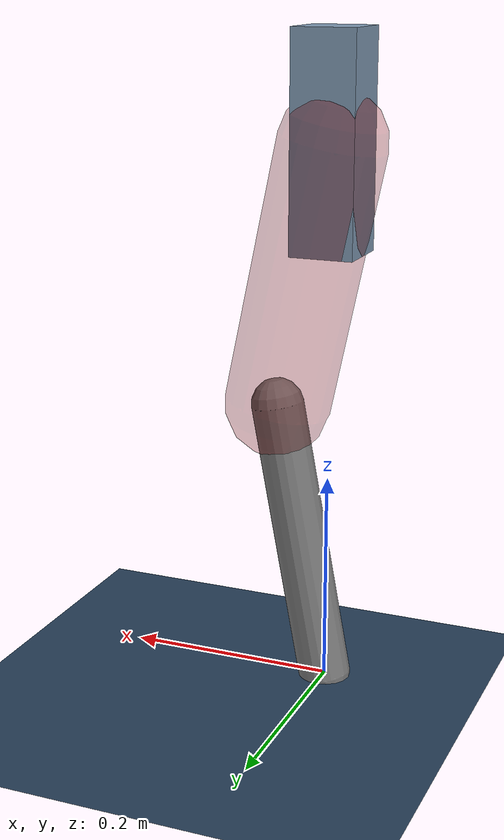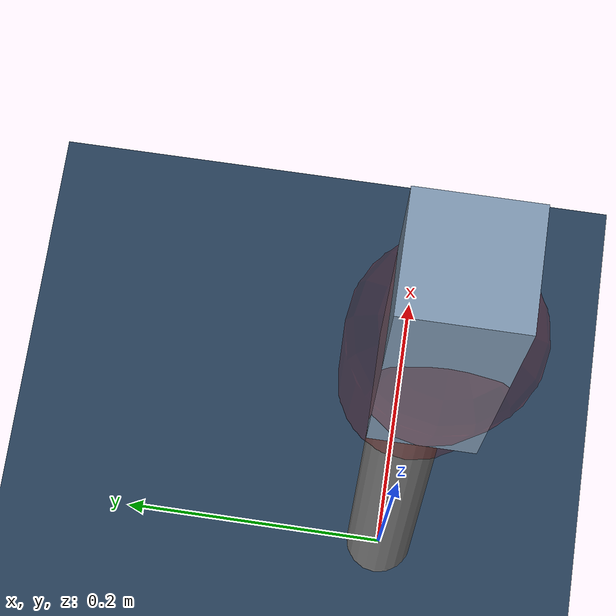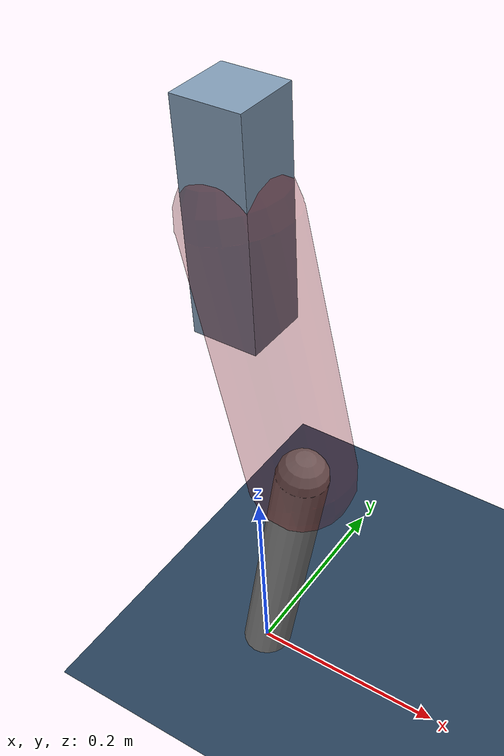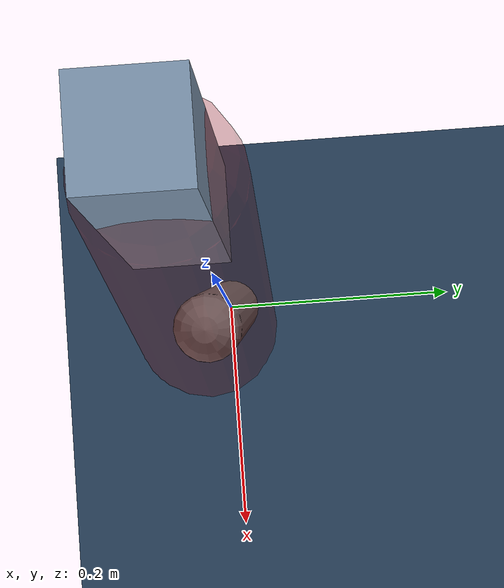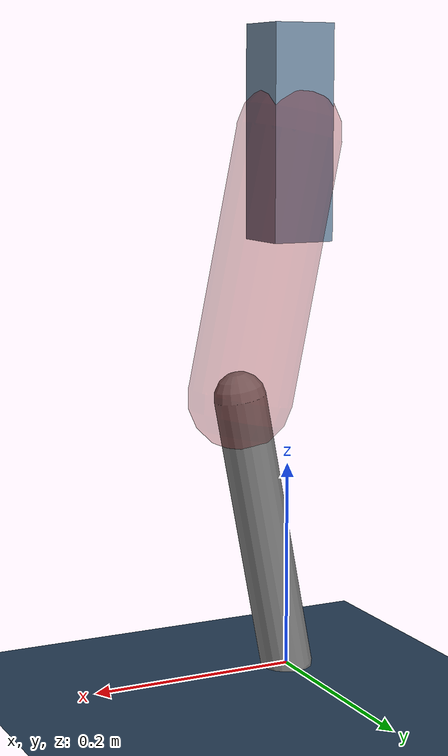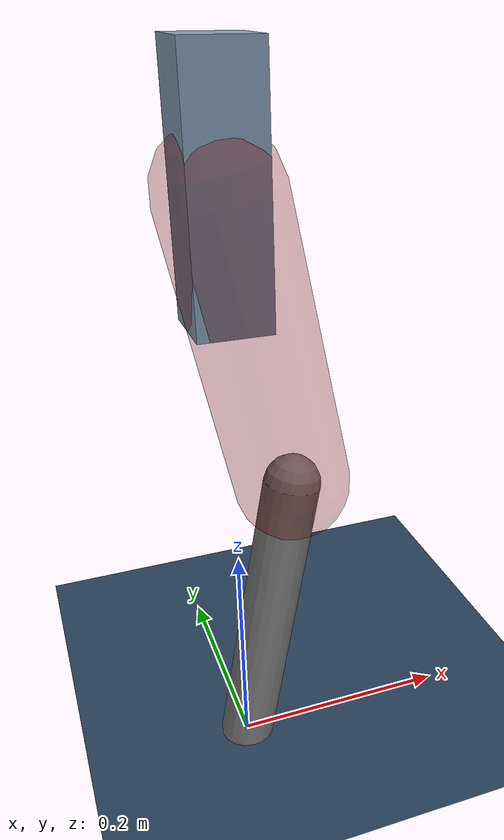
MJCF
<mujoco model="Hopper2D">
	<compiler inertiafromgeom="true" angle="radian" />
	<option timestep="0.001" integrator="implicit" cone="elliptic" solver="Newton" tolerance="1e-10" />

	<default>
		<geom contype="1" conaffinity="1" condim="3" friction="2 0.005 0.0001" solref="0.005 1" />
		<joint limited="true" damping="0.1" />
	</default>

	<asset>
		<texture name="skybox" type="skybox" builtin="gradient" rgb1=".4 .6 .8" rgb2="0 0 0" width="800" height="800" />
		<texture name="grid" type="2d" builtin="checker" rgb1=".1 .2 .3" rgb2=".2 .3 .4" width="300" height="300" mark="edge" markrgb=".2 .3 .4" />
		<material name="ground" texture="grid" texrepeat="1 1" texuniform="true" reflectance="0.1" />
		<material name="leg" rgba="0.5 0.6 0.7 1" />
	</asset>

	<worldbody>

		<geom name="floor" type="plane" size="5 5 0.25" material="ground" />

		<light directional="false" diffuse="0.8 0.8 0.8" specular="0.3 0.3 0.3" pos="0 0 2" dir="0 0 -1" />
		<light mode="targetbodycom" target="base" directional="false" diffuse="0.8 0.8 0.8" specular="0.3 0.3 0.3" pos="0 0 2" dir="0 0 -1" />

		<camera name="fixed" pos="0 -2 1" xyaxes="1 0 0 0 0 1" />
		<camera name="tracking" mode="trackcom" pos="0 -3 1" />

		<body name="root" pos="0 0 0.5147801867955275">
			<joint name="slide_x" type="slide" axis="1 0 0" range="-100 100" />
			<joint name="slide_z" type="slide" axis="0 0 1" range="0 10" />

			<body name="base" pos="0 0 0">
				<geom name="torso" type="box" size="0.03 0.03 0.1" mass="2.2640000000000002" material="leg" />

				<body name="link1" pos="0 0 0" euler="0 1.367135210202431 0">
					<joint type="hinge" axis="0 -1 0" pos="0 0 0" name="hinge1" limited="true" range="-3.14 3.14" stiffness="0" damping="0.1" />
					<geom name="thigh" type="capsule" fromto="0 0 0 0.25184201154554586 0 0" size="0.05" rgba="0.5 0 0 0.3" mass="0.8611892300184193" />

					<body name="link2" pos="0.25184201154554586 0 0" euler="0 0.39138492808927666 0">
						<joint type="hinge" axis="0 -1 0" pos="0 0 0" name="hinge2" limited="true" range="-3.14 3.14" stiffness="0" damping="0.1" />
						<geom name="shank" type="capsule" fromto="0 0 0 0.27293817524998165 0 0" size="0.025" mass="0.4613505401999853" />

					</body>
				</body>
			</body>
		</body>
	</worldbody>

	<actuator>
		<motor name="torque1" joint="hinge1" ctrlrange="-89.87304364781403 89.87304364781403" ctrllimited="true" gear="1" />
		<motor name="torque2" joint="hinge2" ctrlrange="-99.90305306493454 99.90305306493454" ctrllimited="true" gear="1" />
	</actuator>
</mujoco>
